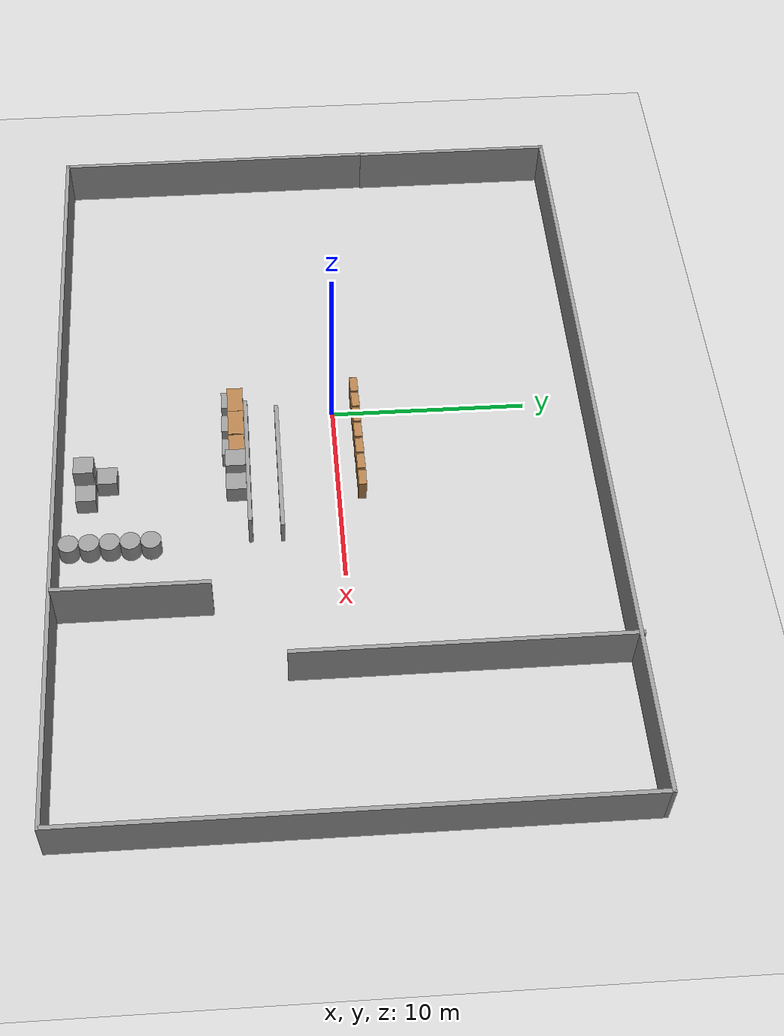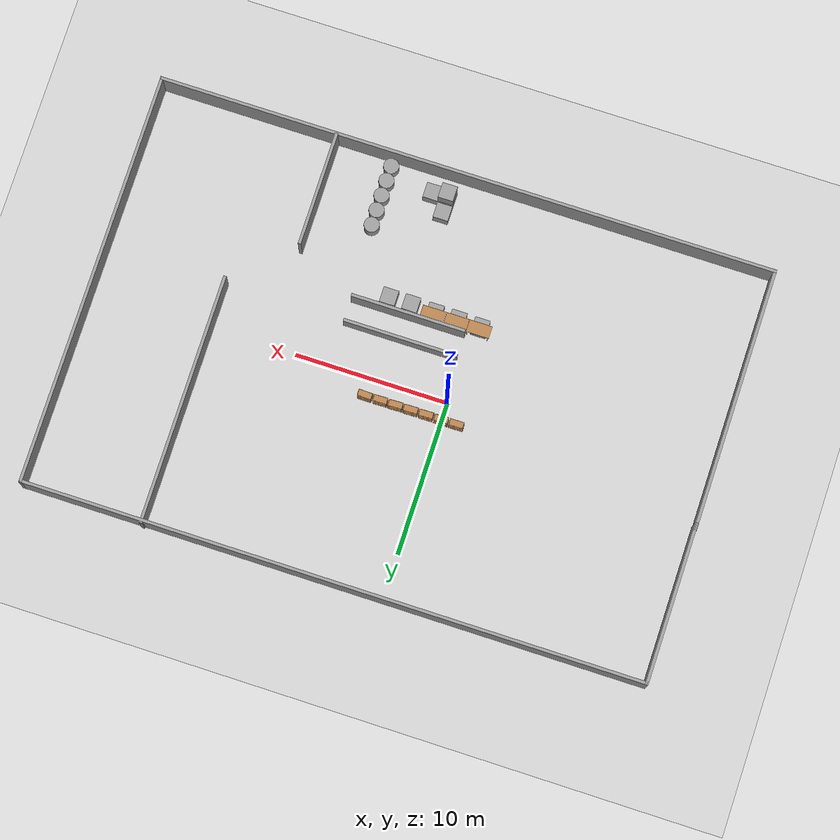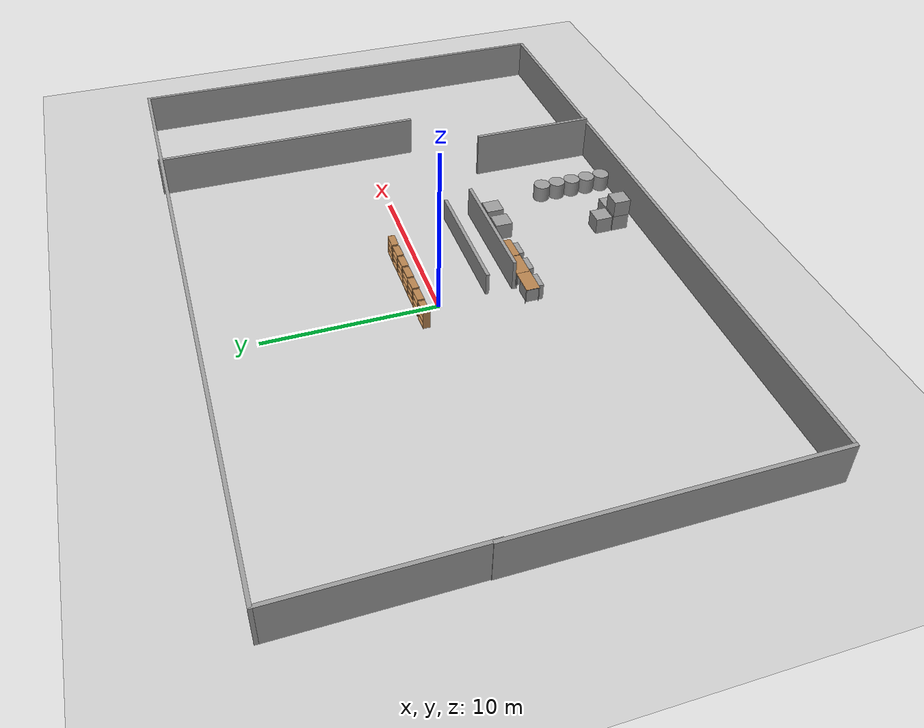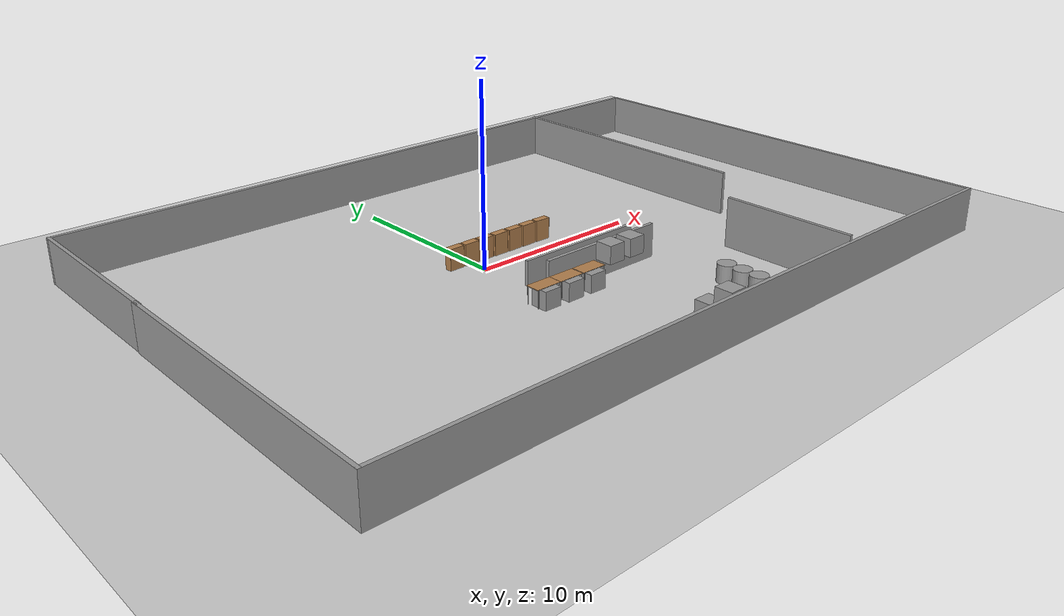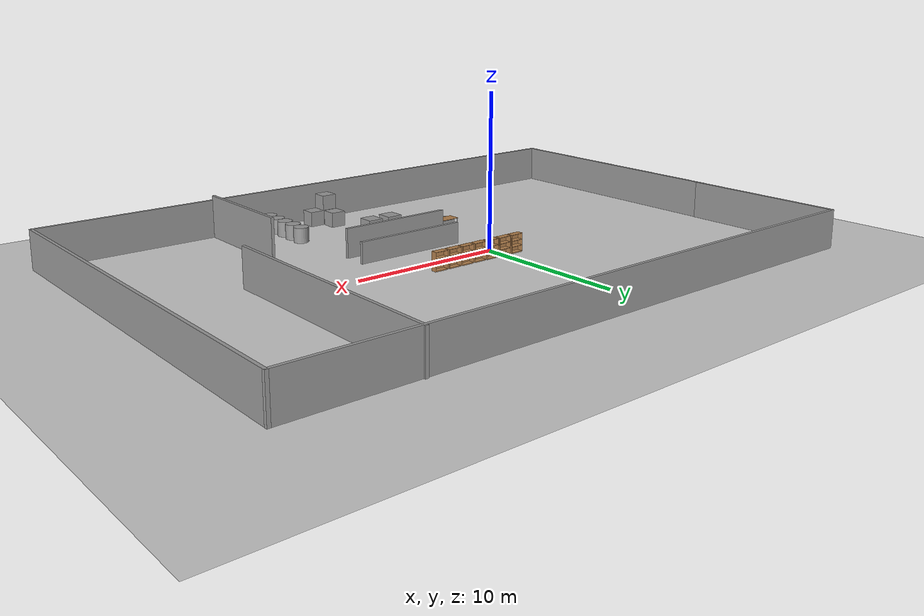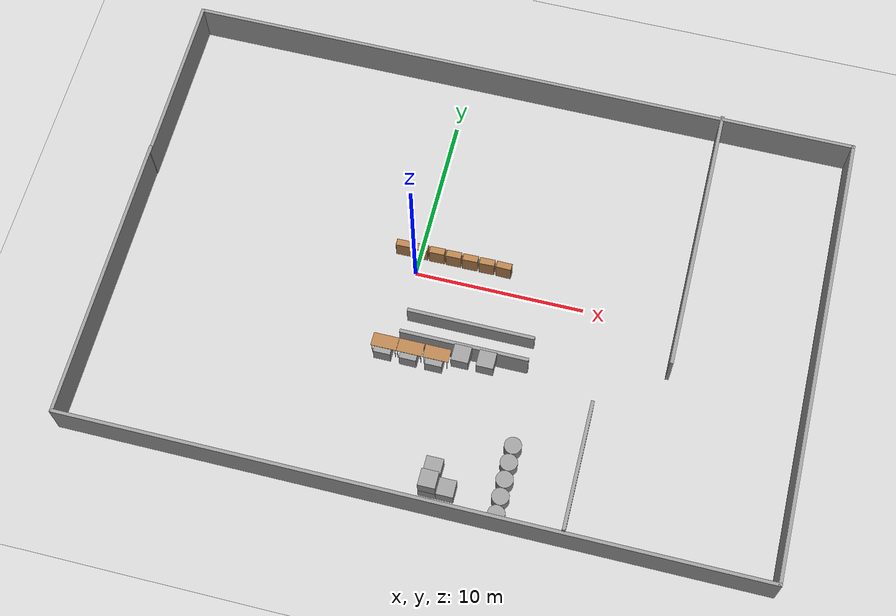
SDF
<sdf version="1.4">
 <world name="default">
  <model name="ground_plane">
   <static>1</static>
   <link name="link">
    <collision name="collision">
     <geometry><plane><normal>0 0 1</normal><size>100 100</size></plane></geometry>
     <surface><friction><ode><mu>100</mu><mu2>50</mu2></ode></friction></surface>
    </collision>
    <visual name="visual">
     <cast_shadows>0</cast_shadows>
     <geometry><plane><normal>0 0 1</normal><size>100 100</size></plane></geometry>
     <material>
      <script><uri>file://media/materials/scripts/gazebo.material</uri><name>Gazebo/Grey</name></script>
     </material>
    </visual>
    <velocity_decay><linear>0</linear><angular>0</angular></velocity_decay>
   </link>
  </model>
  <model name="model">
   <link name="Wall_1">
    <collision name="Wall_1_Collision">
     <geometry><box><size>17.2537 0.2 2.5</size></box></geometry>
     <pose>0 0 1.25 0 -0 0</pose>
    </collision>
    <visual name="Wall_1_Visual">
     <pose>0 0 1.25 0 -0 0</pose>
     <geometry><box><size>17.2537 0.2 2.5</size></box></geometry>
     <material>
      <script><uri>file://media/materials/scripts/gazebo.material</uri><name>Gazebo/Grey</name></script>
     </material>
    </visual>
    <velocity_decay><linear>0</linear><angular>0</angular></velocity_decay>
    <pose>-20.2542 -5.39043 0 0 0 -1.5708</pose>
   </link>
   <link name="Wall_2">
    <collision name="Wall_2_Collision">
     <geometry><box><size>40.6619 0.2 2.5</size></box></geometry>
     <pose>0 0 1.25 0 -0 0</pose>
    </collision>
    <visual name="Wall_2_Visual">
     <pose>0 0 1.25 0 -0 0</pose>
     <geometry><box><size>40.6619 0.2 2.5</size></box></geometry>
     <material>
      <script><uri>file://media/materials/scripts/gazebo.material</uri><name>Gazebo/Grey</name></script>
     </material>
    </visual>
    <velocity_decay><linear>0</linear><angular>0</angular></velocity_decay>
    <pose>-0.02326 -13.9173 0 0 -0 0</pose>
   </link>
   <link name="Wall_3">
    <collision name="Wall_3_Collision">
     <geometry><box><size>27.2435 0.2 2.5</size></box></geometry>
     <pose>0 0 1.25 0 -0 0</pose>
    </collision>
    <visual name="Wall_3_Visual">
     <pose>0 0 1.25 0 -0 0</pose>
     <geometry><box><size>27.2435 0.2 2.5</size></box></geometry>
     <material>
      <script><uri>file://media/materials/scripts/gazebo.material</uri><name>Gazebo/Grey</name></script>
     </material>
    </visual>
    <velocity_decay><linear>0</linear><angular>0</angular></velocity_decay>
    <pose>20.2077 -0.395493 0 0 -0 1.5708</pose>
   </link>
   <link name="Wall_4">
    <collision name="Wall_4_Collision">
     <geometry><box><size>40.6249 0.2 2.5</size></box></geometry>
     <pose>0 0 1.25 0 -0 0</pose>
    </collision>
    <visual name="Wall_4_Visual">
     <pose>0 0 1.25 0 -0 0</pose>
     <geometry><box><size>40.6249 0.2 2.5</size></box></geometry>
     <material>
      <script><uri>file://media/materials/scripts/gazebo.material</uri><name>Gazebo/Grey</name></script>
     </material>
    </visual>
    <velocity_decay><linear>0</linear><angular>0</angular></velocity_decay>
    <pose>-0.004758 13.1263 0 0 -0 3.14159</pose>
   </link>
   <link name="Wall_5">
    <collision name="Wall_5_Collision">
     <geometry><box><size>10.4934 0.2 2.5</size></box></geometry>
     <pose>0 0 1.25 0 -0 0</pose>
    </collision>
    <visual name="Wall_5_Visual">
     <pose>0 0 1.25 0 -0 0</pose>
     <geometry><box><size>10.4934 0.2 2.5</size></box></geometry>
     <material>
      <script><uri>file://media/materials/scripts/gazebo.material</uri><name>Gazebo/Grey</name></script>
     </material>
    </visual>
    <velocity_decay><linear>0</linear><angular>0</angular></velocity_decay>
    <pose>-20.2172 7.97958 0 0 0 -1.5708</pose>
   </link>
   <link name="Wall_7">
    <collision name="Wall_7_Collision">
     <geometry><box><size>16.3419 0.2 2.5</size></box></geometry>
     <pose>0 0 1.25 0 -0 0</pose>
    </collision>
    <visual name="Wall_7_Visual">
     <pose>0 0 1.25 0 -0 0</pose>
     <geometry><box><size>16.3419 0.2 2.5</size></box></geometry>
     <material>
      <script><uri>file://media/materials/scripts/gazebo.material</uri><name>Gazebo/Grey</name></script>
     </material>
    </visual>
    <velocity_decay><linear>0</linear><angular>0</angular></velocity_decay>
    <pose>12.3275 5.15285 0 0 0 -1.5708</pose>
   </link>
   <static>1</static>
   <pose>3.2317 -0.01025 0 0 -0 0</pose>
  </model>
  <model name="bookshelf_3">
   <static>1</static>
   <link name="link">
    <inertial><mass>1</mass></inertial>
    <collision name="back">
     <pose>0 0.005 0.6 0 -0 0</pose>
     <geometry><box><size>0.9 0.01 1.2</size></box></geometry>
    </collision>
    <visual name="visual1">
     <pose>0 0.005 0.6 0 -0 0</pose>
     <geometry><box><size>0.9 0.01 1.2</size></box></geometry>
     <material>
      <script><uri>file://media/materials/scripts/gazebo.material</uri><name>Gazebo/Wood</name></script>
     </material>
    </visual>
    <collision name="left_side">
     <pose>0.45 -0.195 0.6 0 -0 0</pose>
     <geometry><box><size>0.02 0.4 1.2</size></box></geometry>
    </collision>
    <visual name="visual2">
     <pose>0.45 -0.195 0.6 0 -0 0</pose>
     <geometry><box><size>0.02 0.4 1.2</size></box></geometry>
     <material>
      <script><uri>file://media/materials/scripts/gazebo.material</uri><name>Gazebo/Wood</name></script>
     </material>
    </visual>
    <collision name="right_side">
     <pose>-0.45 -0.195 0.6 0 -0 0</pose>
     <geometry><box><size>0.02 0.4 1.2</size></box></geometry>
    </collision>
    <visual name="visual3">
     <pose>-0.45 -0.195 0.6 0 -0 0</pose>
     <geometry><box><size>0.02 0.4 1.2</size></box></geometry>
     <material>
      <script><uri>file://media/materials/scripts/gazebo.material</uri><name>Gazebo/Wood</name></script>
     </material>
    </visual>
    <collision name="bottom">
     <pose>0 -0.195 0.03 0 -0 0</pose>
     <geometry><box><size>0.88 0.4 0.06</size></box></geometry>
    </collision>
    <visual name="visual4">
     <pose>0 -0.195 0.03 0 -0 0</pose>
     <geometry><box><size>0.88 0.4 0.06</size></box></geometry>
     <material>
      <script><uri>file://media/materials/scripts/gazebo.material</uri><name>Gazebo/Wood</name></script>
     </material>
    </visual>
    <collision name="top">
     <pose>0 -0.195 1.19 0 -0 0</pose>
     <geometry><box><size>0.88 0.4 0.02</size></box></geometry>
    </collision>
    <visual name="visual5">
     <pose>0 -0.195 1.19 0 -0 0</pose>
     <geometry><box><size>0.88 0.4 0.02</size></box></geometry>
     <material>
      <script><uri>file://media/materials/scripts/gazebo.material</uri><name>Gazebo/Wood</name></script>
     </material>
    </visual>
    <collision name="low_shelf">
     <pose>0 -0.195 0.43 0 -0 0</pose>
     <geometry><box><size>0.88 0.4 0.02</size></box></geometry>
    </collision>
    <visual name="visual6">
     <pose>0 -0.195 0.43 0 -0 0</pose>
     <geometry><box><size>0.88 0.4 0.02</size></box></geometry>
     <material>
      <script><uri>file://media/materials/scripts/gazebo.material</uri><name>Gazebo/Wood</name></script>
     </material>
    </visual>
    <collision name="high_shelf">
     <pose>0 -0.195 0.8 0 -0 0</pose>
     <geometry><box><size>0.88 0.4 0.02</size></box></geometry>
    </collision>
    <visual name="visual7">
     <pose>0 -0.195 0.8 0 -0 0</pose>
     <geometry><box><size>0.88 0.4 0.02</size></box></geometry>
     <material>
      <script><uri>file://media/materials/scripts/gazebo.material</uri><name>Gazebo/Wood</name></script>
     </material>
    </visual>
    <velocity_decay><linear>0</linear><angular>0</angular></velocity_decay>
   </link>
   <pose>5 1 0 0 -0 3.11866</pose>
  </model>
  <model name="bookshelf_4">
   <static>1</static>
   <link name="link">
    <inertial><mass>1</mass></inertial>
    <collision name="back">
     <pose>0 0.005 0.6 0 -0 0</pose>
     <geometry><box><size>0.9 0.01 1.2</size></box></geometry>
    </collision>
    <visual name="visual1">
     <pose>0 0.005 0.6 0 -0 0</pose>
     <geometry><box><size>0.9 0.01 1.2</size></box></geometry>
     <material>
      <script><uri>file://media/materials/scripts/gazebo.material</uri><name>Gazebo/Wood</name></script>
     </material>
    </visual>
    <collision name="left_side">
     <pose>0.45 -0.195 0.6 0 -0 0</pose>
     <geometry><box><size>0.02 0.4 1.2</size></box></geometry>
    </collision>
    <visual name="visual2">
     <pose>0.45 -0.195 0.6 0 -0 0</pose>
     <geometry><box><size>0.02 0.4 1.2</size></box></geometry>
     <material>
      <script><uri>file://media/materials/scripts/gazebo.material</uri><name>Gazebo/Wood</name></script>
     </material>
    </visual>
    <collision name="right_side">
     <pose>-0.45 -0.195 0.6 0 -0 0</pose>
     <geometry><box><size>0.02 0.4 1.2</size></box></geometry>
    </collision>
    <visual name="visual3">
     <pose>-0.45 -0.195 0.6 0 -0 0</pose>
     <geometry><box><size>0.02 0.4 1.2</size></box></geometry>
     <material>
      <script><uri>file://media/materials/scripts/gazebo.material</uri><name>Gazebo/Wood</name></script>
     </material>
    </visual>
    <collision name="bottom">
     <pose>0 -0.195 0.03 0 -0 0</pose>
     <geometry><box><size>0.88 0.4 0.06</size></box></geometry>
    </collision>
    <visual name="visual4">
     <pose>0 -0.195 0.03 0 -0 0</pose>
     <geometry><box><size>0.88 0.4 0.06</size></box></geometry>
     <material>
      <script><uri>file://media/materials/scripts/gazebo.material</uri><name>Gazebo/Wood</name></script>
     </material>
    </visual>
    <collision name="top">
     <pose>0 -0.195 1.19 0 -0 0</pose>
     <geometry><box><size>0.88 0.4 0.02</size></box></geometry>
    </collision>
    <visual name="visual5">
     <pose>0 -0.195 1.19 0 -0 0</pose>
     <geometry><box><size>0.88 0.4 0.02</size></box></geometry>
     <material>
      <script><uri>file://media/materials/scripts/gazebo.material</uri><name>Gazebo/Wood</name></script>
     </material>
    </visual>
    <collision name="low_shelf">
     <pose>0 -0.195 0.43 0 -0 0</pose>
     <geometry><box><size>0.88 0.4 0.02</size></box></geometry>
    </collision>
    <visual name="visual6">
     <pose>0 -0.195 0.43 0 -0 0</pose>
     <geometry><box><size>0.88 0.4 0.02</size></box></geometry>
     <material>
      <script><uri>file://media/materials/scripts/gazebo.material</uri><name>Gazebo/Wood</name></script>
     </material>
    </visual>
    <collision name="high_shelf">
     <pose>0 -0.195 0.8 0 -0 0</pose>
     <geometry><box><size>0.88 0.4 0.02</size></box></geometry>
    </collision>
    <visual name="visual7">
     <pose>0 -0.195 0.8 0 -0 0</pose>
     <geometry><box><size>0.88 0.4 0.02</size></box></geometry>
     <material>
      <script><uri>file://media/materials/scripts/gazebo.material</uri><name>Gazebo/Wood</name></script>
     </material>
    </visual>
    <velocity_decay><linear>0</linear><angular>0</angular></velocity_decay>
   </link>
   <pose>4 1 0 0 0 -3.1202</pose>
  </model>
  <model name="bookshelf_5">
   <static>1</static>
   <link name="link">
    <inertial><mass>1</mass></inertial>
    <collision name="back">
     <pose>0 0.005 0.6 0 -0 0</pose>
     <geometry><box><size>0.9 0.01 1.2</size></box></geometry>
    </collision>
    <visual name="visual1">
     <pose>0 0.005 0.6 0 -0 0</pose>
     <geometry><box><size>0.9 0.01 1.2</size></box></geometry>
     <material>
      <script><uri>file://media/materials/scripts/gazebo.material</uri><name>Gazebo/Wood</name></script>
     </material>
    </visual>
    <collision name="left_side">
     <pose>0.45 -0.195 0.6 0 -0 0</pose>
     <geometry><box><size>0.02 0.4 1.2</size></box></geometry>
    </collision>
    <visual name="visual2">
     <pose>0.45 -0.195 0.6 0 -0 0</pose>
     <geometry><box><size>0.02 0.4 1.2</size></box></geometry>
     <material>
      <script><uri>file://media/materials/scripts/gazebo.material</uri><name>Gazebo/Wood</name></script>
     </material>
    </visual>
    <collision name="right_side">
     <pose>-0.45 -0.195 0.6 0 -0 0</pose>
     <geometry><box><size>0.02 0.4 1.2</size></box></geometry>
    </collision>
    <visual name="visual3">
     <pose>-0.45 -0.195 0.6 0 -0 0</pose>
     <geometry><box><size>0.02 0.4 1.2</size></box></geometry>
     <material>
      <script><uri>file://media/materials/scripts/gazebo.material</uri><name>Gazebo/Wood</name></script>
     </material>
    </visual>
    <collision name="bottom">
     <pose>0 -0.195 0.03 0 -0 0</pose>
     <geometry><box><size>0.88 0.4 0.06</size></box></geometry>
    </collision>
    <visual name="visual4">
     <pose>0 -0.195 0.03 0 -0 0</pose>
     <geometry><box><size>0.88 0.4 0.06</size></box></geometry>
     <material>
      <script><uri>file://media/materials/scripts/gazebo.material</uri><name>Gazebo/Wood</name></script>
     </material>
    </visual>
    <collision name="top">
     <pose>0 -0.195 1.19 0 -0 0</pose>
     <geometry><box><size>0.88 0.4 0.02</size></box></geometry>
    </collision>
    <visual name="visual5">
     <pose>0 -0.195 1.19 0 -0 0</pose>
     <geometry><box><size>0.88 0.4 0.02</size></box></geometry>
     <material>
      <script><uri>file://media/materials/scripts/gazebo.material</uri><name>Gazebo/Wood</name></script>
     </material>
    </visual>
    <collision name="low_shelf">
     <pose>0 -0.195 0.43 0 -0 0</pose>
     <geometry><box><size>0.88 0.4 0.02</size></box></geometry>
    </collision>
    <visual name="visual6">
     <pose>0 -0.195 0.43 0 -0 0</pose>
     <geometry><box><size>0.88 0.4 0.02</size></box></geometry>
     <material>
      <script><uri>file://media/materials/scripts/gazebo.material</uri><name>Gazebo/Wood</name></script>
     </material>
    </visual>
    <collision name="high_shelf">
     <pose>0 -0.195 0.8 0 -0 0</pose>
     <geometry><box><size>0.88 0.4 0.02</size></box></geometry>
    </collision>
    <visual name="visual7">
     <pose>0 -0.195 0.8 0 -0 0</pose>
     <geometry><box><size>0.88 0.4 0.02</size></box></geometry>
     <material>
      <script><uri>file://media/materials/scripts/gazebo.material</uri><name>Gazebo/Wood</name></script>
     </material>
    </visual>
    <velocity_decay><linear>0</linear><angular>0</angular></velocity_decay>
   </link>
   <pose>3 1 0 0 0 -3.11535</pose>
  </model>
  <model name="bookshelf_6">
   <static>1</static>
   <link name="link">
    <inertial><mass>1</mass></inertial>
    <collision name="back">
     <pose>0 0.005 0.6 0 -0 0</pose>
     <geometry><box><size>0.9 0.01 1.2</size></box></geometry>
    </collision>
    <visual name="visual1">
     <pose>0 0.005 0.6 0 -0 0</pose>
     <geometry><box><size>0.9 0.01 1.2</size></box></geometry>
     <material>
      <script><uri>file://media/materials/scripts/gazebo.material</uri><name>Gazebo/Wood</name></script>
     </material>
    </visual>
    <collision name="left_side">
     <pose>0.45 -0.195 0.6 0 -0 0</pose>
     <geometry><box><size>0.02 0.4 1.2</size></box></geometry>
    </collision>
    <visual name="visual2">
     <pose>0.45 -0.195 0.6 0 -0 0</pose>
     <geometry><box><size>0.02 0.4 1.2</size></box></geometry>
     <material>
      <script><uri>file://media/materials/scripts/gazebo.material</uri><name>Gazebo/Wood</name></script>
     </material>
    </visual>
    <collision name="right_side">
     <pose>-0.45 -0.195 0.6 0 -0 0</pose>
     <geometry><box><size>0.02 0.4 1.2</size></box></geometry>
    </collision>
    <visual name="visual3">
     <pose>-0.45 -0.195 0.6 0 -0 0</pose>
     <geometry><box><size>0.02 0.4 1.2</size></box></geometry>
     <material>
      <script><uri>file://media/materials/scripts/gazebo.material</uri><name>Gazebo/Wood</name></script>
     </material>
    </visual>
    <collision name="bottom">
     <pose>0 -0.195 0.03 0 -0 0</pose>
     <geometry><box><size>0.88 0.4 0.06</size></box></geometry>
    </collision>
    <visual name="visual4">
     <pose>0 -0.195 0.03 0 -0 0</pose>
     <geometry><box><size>0.88 0.4 0.06</size></box></geometry>
     <material>
      <script><uri>file://media/materials/scripts/gazebo.material</uri><name>Gazebo/Wood</name></script>
     </material>
    </visual>
    <collision name="top">
     <pose>0 -0.195 1.19 0 -0 0</pose>
     <geometry><box><size>0.88 0.4 0.02</size></box></geometry>
    </collision>
    <visual name="visual5">
     <pose>0 -0.195 1.19 0 -0 0</pose>
     <geometry><box><size>0.88 0.4 0.02</size></box></geometry>
     <material>
      <script><uri>file://media/materials/scripts/gazebo.material</uri><name>Gazebo/Wood</name></script>
     </material>
    </visual>
    <collision name="low_shelf">
     <pose>0 -0.195 0.43 0 -0 0</pose>
     <geometry><box><size>0.88 0.4 0.02</size></box></geometry>
    </collision>
    <visual name="visual6">
     <pose>0 -0.195 0.43 0 -0 0</pose>
     <geometry><box><size>0.88 0.4 0.02</size></box></geometry>
     <material>
      <script><uri>file://media/materials/scripts/gazebo.material</uri><name>Gazebo/Wood</name></script>
     </material>
    </visual>
    <collision name="high_shelf">
     <pose>0 -0.195 0.8 0 -0 0</pose>
     <geometry><box><size>0.88 0.4 0.02</size></box></geometry>
    </collision>
    <visual name="visual7">
     <pose>0 -0.195 0.8 0 -0 0</pose>
     <geometry><box><size>0.88 0.4 0.02</size></box></geometry>
     <material>
      <script><uri>file://media/materials/scripts/gazebo.material</uri><name>Gazebo/Wood</name></script>
     </material>
    </visual>
    <velocity_decay><linear>0</linear><angular>0</angular></velocity_decay>
   </link>
   <pose>2 1 0 0 0 -3.1207</pose>
  </model>
  <model name="bookshelf_7">
   <static>1</static>
   <link name="link">
    <inertial><mass>1</mass></inertial>
    <collision name="back">
     <pose>0 0.005 0.6 0 -0 0</pose>
     <geometry><box><size>0.9 0.01 1.2</size></box></geometry>
    </collision>
    <visual name="visual1">
     <pose>0 0.005 0.6 0 -0 0</pose>
     <geometry><box><size>0.9 0.01 1.2</size></box></geometry>
     <material>
      <script><uri>file://media/materials/scripts/gazebo.material</uri><name>Gazebo/Wood</name></script>
     </material>
    </visual>
    <collision name="left_side">
     <pose>0.45 -0.195 0.6 0 -0 0</pose>
     <geometry><box><size>0.02 0.4 1.2</size></box></geometry>
    </collision>
    <visual name="visual2">
     <pose>0.45 -0.195 0.6 0 -0 0</pose>
     <geometry><box><size>0.02 0.4 1.2</size></box></geometry>
     <material>
      <script><uri>file://media/materials/scripts/gazebo.material</uri><name>Gazebo/Wood</name></script>
     </material>
    </visual>
    <collision name="right_side">
     <pose>-0.45 -0.195 0.6 0 -0 0</pose>
     <geometry><box><size>0.02 0.4 1.2</size></box></geometry>
    </collision>
    <visual name="visual3">
     <pose>-0.45 -0.195 0.6 0 -0 0</pose>
     <geometry><box><size>0.02 0.4 1.2</size></box></geometry>
     <material>
      <script><uri>file://media/materials/scripts/gazebo.material</uri><name>Gazebo/Wood</name></script>
     </material>
    </visual>
    <collision name="bottom">
     <pose>0 -0.195 0.03 0 -0 0</pose>
     <geometry><box><size>0.88 0.4 0.06</size></box></geometry>
    </collision>
    <visual name="visual4">
     <pose>0 -0.195 0.03 0 -0 0</pose>
     <geometry><box><size>0.88 0.4 0.06</size></box></geometry>
     <material>
      <script><uri>file://media/materials/scripts/gazebo.material</uri><name>Gazebo/Wood</name></script>
     </material>
    </visual>
    <collision name="top">
     <pose>0 -0.195 1.19 0 -0 0</pose>
     <geometry><box><size>0.88 0.4 0.02</size></box></geometry>
    </collision>
    <visual name="visual5">
     <pose>0 -0.195 1.19 0 -0 0</pose>
     <geometry><box><size>0.88 0.4 0.02</size></box></geometry>
     <material>
      <script><uri>file://media/materials/scripts/gazebo.material</uri><name>Gazebo/Wood</name></script>
     </material>
    </visual>
    <collision name="low_shelf">
     <pose>0 -0.195 0.43 0 -0 0</pose>
     <geometry><box><size>0.88 0.4 0.02</size></box></geometry>
    </collision>
    <visual name="visual6">
     <pose>0 -0.195 0.43 0 -0 0</pose>
     <geometry><box><size>0.88 0.4 0.02</size></box></geometry>
     <material>
      <script><uri>file://media/materials/scripts/gazebo.material</uri><name>Gazebo/Wood</name></script>
     </material>
    </visual>
    <collision name="high_shelf">
     <pose>0 -0.195 0.8 0 -0 0</pose>
     <geometry><box><size>0.88 0.4 0.02</size></box></geometry>
    </collision>
    <visual name="visual7">
     <pose>0 -0.195 0.8 0 -0 0</pose>
     <geometry><box><size>0.88 0.4 0.02</size></box></geometry>
     <material>
      <script><uri>file://media/materials/scripts/gazebo.material</uri><name>Gazebo/Wood</name></script>
     </material>
    </visual>
    <velocity_decay><linear>0</linear><angular>0</angular></velocity_decay>
   </link>
   <pose>1 1 0 0 0 -3.11494</pose>
  </model>
  <model name="bookshelf_8">
   <static>1</static>
   <link name="link">
    <inertial><mass>1</mass></inertial>
    <collision name="back">
     <pose>0 0.005 0.6 0 -0 0</pose>
     <geometry><box><size>0.9 0.01 1.2</size></box></geometry>
    </collision>
    <visual name="visual1">
     <pose>0 0.005 0.6 0 -0 0</pose>
     <geometry><box><size>0.9 0.01 1.2</size></box></geometry>
     <material>
      <script><uri>file://media/materials/scripts/gazebo.material</uri><name>Gazebo/Wood</name></script>
     </material>
    </visual>
    <collision name="left_side">
     <pose>0.45 -0.195 0.6 0 -0 0</pose>
     <geometry><box><size>0.02 0.4 1.2</size></box></geometry>
    </collision>
    <visual name="visual2">
     <pose>0.45 -0.195 0.6 0 -0 0</pose>
     <geometry><box><size>0.02 0.4 1.2</size></box></geometry>
     <material>
      <script><uri>file://media/materials/scripts/gazebo.material</uri><name>Gazebo/Wood</name></script>
     </material>
    </visual>
    <collision name="right_side">
     <pose>-0.45 -0.195 0.6 0 -0 0</pose>
     <geometry><box><size>0.02 0.4 1.2</size></box></geometry>
    </collision>
    <visual name="visual3">
     <pose>-0.45 -0.195 0.6 0 -0 0</pose>
     <geometry><box><size>0.02 0.4 1.2</size></box></geometry>
     <material>
      <script><uri>file://media/materials/scripts/gazebo.material</uri><name>Gazebo/Wood</name></script>
     </material>
    </visual>
    <collision name="bottom">
     <pose>0 -0.195 0.03 0 -0 0</pose>
     <geometry><box><size>0.88 0.4 0.06</size></box></geometry>
    </collision>
    <visual name="visual4">
     <pose>0 -0.195 0.03 0 -0 0</pose>
     <geometry><box><size>0.88 0.4 0.06</size></box></geometry>
     <material>
      <script><uri>file://media/materials/scripts/gazebo.material</uri><name>Gazebo/Wood</name></script>
     </material>
    </visual>
    <collision name="top">
     <pose>0 -0.195 1.19 0 -0 0</pose>
     <geometry><box><size>0.88 0.4 0.02</size></box></geometry>
    </collision>
    <visual name="visual5">
     <pose>0 -0.195 1.19 0 -0 0</pose>
     <geometry><box><size>0.88 0.4 0.02</size></box></geometry>
     <material>
      <script><uri>file://media/materials/scripts/gazebo.material</uri><name>Gazebo/Wood</name></script>
     </material>
    </visual>
    <collision name="low_shelf">
     <pose>0 -0.195 0.43 0 -0 0</pose>
     <geometry><box><size>0.88 0.4 0.02</size></box></geometry>
    </collision>
    <visual name="visual6">
     <pose>0 -0.195 0.43 0 -0 0</pose>
     <geometry><box><size>0.88 0.4 0.02</size></box></geometry>
     <material>
      <script><uri>file://media/materials/scripts/gazebo.material</uri><name>Gazebo/Wood</name></script>
     </material>
    </visual>
    <collision name="high_shelf">
     <pose>0 -0.195 0.8 0 -0 0</pose>
     <geometry><box><size>0.88 0.4 0.02</size></box></geometry>
    </collision>
    <visual name="visual7">
     <pose>0 -0.195 0.8 0 -0 0</pose>
     <geometry><box><size>0.88 0.4 0.02</size></box></geometry>
     <material>
      <script><uri>file://media/materials/scripts/gazebo.material</uri><name>Gazebo/Wood</name></script>
     </material>
    </visual>
    <velocity_decay><linear>0</linear><angular>0</angular></velocity_decay>
   </link>
   <pose>0 1 0 0 0 -3.12369</pose>
  </model>
  <model name="bookshelf_9">
   <static>1</static>
   <link name="link">
    <inertial><mass>1</mass></inertial>
    <collision name="back">
     <pose>0 0.005 0.6 0 -0 0</pose>
     <geometry><box><size>0.9 0.01 1.2</size></box></geometry>
    </collision>
    <visual name="visual1">
     <pose>0 0.005 0.6 0 -0 0</pose>
     <geometry><box><size>0.9 0.01 1.2</size></box></geometry>
     <material>
      <script><uri>file://media/materials/scripts/gazebo.material</uri><name>Gazebo/Wood</name></script>
     </material>
    </visual>
    <collision name="left_side">
     <pose>0.45 -0.195 0.6 0 -0 0</pose>
     <geometry><box><size>0.02 0.4 1.2</size></box></geometry>
    </collision>
    <visual name="visual2">
     <pose>0.45 -0.195 0.6 0 -0 0</pose>
     <geometry><box><size>0.02 0.4 1.2</size></box></geometry>
     <material>
      <script><uri>file://media/materials/scripts/gazebo.material</uri><name>Gazebo/Wood</name></script>
     </material>
    </visual>
    <collision name="right_side">
     <pose>-0.45 -0.195 0.6 0 -0 0</pose>
     <geometry><box><size>0.02 0.4 1.2</size></box></geometry>
    </collision>
    <visual name="visual3">
     <pose>-0.45 -0.195 0.6 0 -0 0</pose>
     <geometry><box><size>0.02 0.4 1.2</size></box></geometry>
     <material>
      <script><uri>file://media/materials/scripts/gazebo.material</uri><name>Gazebo/Wood</name></script>
     </material>
    </visual>
    <collision name="bottom">
     <pose>0 -0.195 0.03 0 -0 0</pose>
     <geometry><box><size>0.88 0.4 0.06</size></box></geometry>
    </collision>
    <visual name="visual4">
     <pose>0 -0.195 0.03 0 -0 0</pose>
     <geometry><box><size>0.88 0.4 0.06</size></box></geometry>
     <material>
      <script><uri>file://media/materials/scripts/gazebo.material</uri><name>Gazebo/Wood</name></script>
     </material>
    </visual>
    <collision name="top">
     <pose>0 -0.195 1.19 0 -0 0</pose>
     <geometry><box><size>0.88 0.4 0.02</size></box></geometry>
    </collision>
    <visual name="visual5">
     <pose>0 -0.195 1.19 0 -0 0</pose>
     <geometry><box><size>0.88 0.4 0.02</size></box></geometry>
     <material>
      <script><uri>file://media/materials/scripts/gazebo.material</uri><name>Gazebo/Wood</name></script>
     </material>
    </visual>
    <collision name="low_shelf">
     <pose>0 -0.195 0.43 0 -0 0</pose>
     <geometry><box><size>0.88 0.4 0.02</size></box></geometry>
    </collision>
    <visual name="visual6">
     <pose>0 -0.195 0.43 0 -0 0</pose>
     <geometry><box><size>0.88 0.4 0.02</size></box></geometry>
     <material>
      <script><uri>file://media/materials/scripts/gazebo.material</uri><name>Gazebo/Wood</name></script>
     </material>
    </visual>
    <collision name="high_shelf">
     <pose>0 -0.195 0.8 0 -0 0</pose>
     <geometry><box><size>0.88 0.4 0.02</size></box></geometry>
    </collision>
    <visual name="visual7">
     <pose>0 -0.195 0.8 0 -0 0</pose>
     <geometry><box><size>0.88 0.4 0.02</size></box></geometry>
     <material>
      <script><uri>file://media/materials/scripts/gazebo.material</uri><name>Gazebo/Wood</name></script>
     </material>
    </visual>
    <velocity_decay><linear>0</linear><angular>0</angular></velocity_decay>
   </link>
   <pose>-1 1 0 0 0 -3.12411</pose>
  </model>
  <model name="grey_wall_0">
   <static>1</static>
   <link name="link">
    <pose>0 0 1.4 0 -0 0</pose>
    <collision name="collision"><geometry><box><size>7.5 0.2 2.8</size></box></geometry></collision>
    <visual name="visual">
     <cast_shadows>0</cast_shadows>
     <geometry><box><size>7.5 0.2 2.8</size></box></geometry>
     <material>
      <script>
       <uri>model://grey_wall/materials/scripts</uri>
       <uri>model://grey_wall/materials/textures</uri>
       <name>vrc/grey_wall</name>
      </script>
     </material>
    </visual>
    <velocity_decay><linear>0</linear><angular>0</angular></velocity_decay>
   </link>
   <pose>4.01391 -2.89697 -1.46697 0 -0 0</pose>
  </model>
  <model name="grey_wall_1">
   <static>1</static>
   <link name="link">
    <pose>0 0 1.4 0 -0 0</pose>
    <collision name="collision"><geometry><box><size>7.5 0.2 2.8</size></box></geometry></collision>
    <visual name="visual">
     <cast_shadows>0</cast_shadows>
     <geometry><box><size>7.5 0.2 2.8</size></box></geometry>
     <material>
      <script>
       <uri>model://grey_wall/materials/scripts</uri>
       <uri>model://grey_wall/materials/textures</uri>
       <name>vrc/grey_wall</name>
      </script>
     </material>
    </visual>
    <velocity_decay><linear>0</linear><angular>0</angular></velocity_decay>
   </link>
   <pose>4 -4.46518 -0.965655 0 -0 0</pose>
  </model>
  <model name="table_6">
   <static>1</static>
   <link name="link">
    <collision name="surface">
     <pose>0 0 1 0 -0 0</pose>
     <geometry><box><size>1.5 0.8 0.03</size></box></geometry>
     <surface><friction><ode><mu>0.6</mu><mu2>0.6</mu2></ode></friction></surface>
    </collision>
    <visual name="visual1">
     <pose>0 0 1 0 -0 0</pose>
     <geometry><box><size>1.5 0.8 0.03</size></box></geometry>
     <material>
      <script><uri>file://media/materials/scripts/gazebo.material</uri><name>Gazebo/Wood</name></script>
     </material>
    </visual>
    <collision name="front_left_leg">
     <pose>0.68 0.38 0.5 0 -0 0</pose>
     <geometry><cylinder><radius>0.02</radius><length>1</length></cylinder></geometry>
    </collision>
    <visual name="front_left_leg">
     <pose>0.68 0.38 0.5 0 -0 0</pose>
     <geometry><cylinder><radius>0.02</radius><length>1</length></cylinder></geometry>
     <material>
      <script><uri>file://media/materials/scripts/gazebo.material</uri><name>Gazebo/Grey</name></script>
     </material>
    </visual>
    <collision name="front_right_leg">
     <pose>0.68 -0.38 0.5 0 -0 0</pose>
     <geometry><cylinder><radius>0.02</radius><length>1</length></cylinder></geometry>
    </collision>
    <visual name="front_right_leg">
     <pose>0.68 -0.38 0.5 0 -0 0</pose>
     <geometry><cylinder><radius>0.02</radius><length>1</length></cylinder></geometry>
     <material>
      <script><uri>file://media/materials/scripts/gazebo.material</uri><name>Gazebo/Grey</name></script>
     </material>
    </visual>
    <collision name="back_right_leg">
     <pose>-0.68 -0.38 0.5 0 -0 0</pose>
     <geometry><cylinder><radius>0.02</radius><length>1</length></cylinder></geometry>
    </collision>
    <visual name="back_right_leg">
     <pose>-0.68 -0.38 0.5 0 -0 0</pose>
     <geometry><cylinder><radius>0.02</radius><length>1</length></cylinder></geometry>
     <material>
      <script><uri>file://media/materials/scripts/gazebo.material</uri><name>Gazebo/Grey</name></script>
     </material>
    </visual>
    <collision name="back_left_leg">
     <pose>-0.68 0.38 0.5 0 -0 0</pose>
     <geometry><cylinder><radius>0.02</radius><length>1</length></cylinder></geometry>
    </collision>
    <visual name="back_left_leg">
     <pose>-0.68 0.38 0.5 0 -0 0</pose>
     <geometry><cylinder><radius>0.02</radius><length>1</length></cylinder></geometry>
     <material>
      <script><uri>file://media/materials/scripts/gazebo.material</uri><name>Gazebo/Grey</name></script>
     </material>
    </visual>
    <velocity_decay><linear>0</linear><angular>0</angular></velocity_decay>
   </link>
   <pose>-0.505735 -5 0 0 -0 0</pose>
  </model>
  <model name="table_7">
   <static>1</static>
   <link name="link">
    <collision name="surface">
     <pose>0 0 1 0 -0 0</pose>
     <geometry><box><size>1.5 0.8 0.03</size></box></geometry>
     <surface><friction><ode><mu>0.6</mu><mu2>0.6</mu2></ode></friction></surface>
    </collision>
    <visual name="visual1">
     <pose>0 0 1 0 -0 0</pose>
     <geometry><box><size>1.5 0.8 0.03</size></box></geometry>
     <material>
      <script><uri>file://media/materials/scripts/gazebo.material</uri><name>Gazebo/Wood</name></script>
     </material>
    </visual>
    <collision name="front_left_leg">
     <pose>0.68 0.38 0.5 0 -0 0</pose>
     <geometry><cylinder><radius>0.02</radius><length>1</length></cylinder></geometry>
    </collision>
    <visual name="front_left_leg">
     <pose>0.68 0.38 0.5 0 -0 0</pose>
     <geometry><cylinder><radius>0.02</radius><length>1</length></cylinder></geometry>
     <material>
      <script><uri>file://media/materials/scripts/gazebo.material</uri><name>Gazebo/Grey</name></script>
     </material>
    </visual>
    <collision name="front_right_leg">
     <pose>0.68 -0.38 0.5 0 -0 0</pose>
     <geometry><cylinder><radius>0.02</radius><length>1</length></cylinder></geometry>
    </collision>
    <visual name="front_right_leg">
     <pose>0.68 -0.38 0.5 0 -0 0</pose>
     <geometry><cylinder><radius>0.02</radius><length>1</length></cylinder></geometry>
     <material>
      <script><uri>file://media/materials/scripts/gazebo.material</uri><name>Gazebo/Grey</name></script>
     </material>
    </visual>
    <collision name="back_right_leg">
     <pose>-0.68 -0.38 0.5 0 -0 0</pose>
     <geometry><cylinder><radius>0.02</radius><length>1</length></cylinder></geometry>
    </collision>
    <visual name="back_right_leg">
     <pose>-0.68 -0.38 0.5 0 -0 0</pose>
     <geometry><cylinder><radius>0.02</radius><length>1</length></cylinder></geometry>
     <material>
      <script><uri>file://media/materials/scripts/gazebo.material</uri><name>Gazebo/Grey</name></script>
     </material>
    </visual>
    <collision name="back_left_leg">
     <pose>-0.68 0.38 0.5 0 -0 0</pose>
     <geometry><cylinder><radius>0.02</radius><length>1</length></cylinder></geometry>
    </collision>
    <visual name="back_left_leg">
     <pose>-0.68 0.38 0.5 0 -0 0</pose>
     <geometry><cylinder><radius>0.02</radius><length>1</length></cylinder></geometry>
     <material>
      <script><uri>file://media/materials/scripts/gazebo.material</uri><name>Gazebo/Grey</name></script>
     </material>
    </visual>
    <velocity_decay><linear>0</linear><angular>0</angular></velocity_decay>
   </link>
   <pose>1 -5 0 0 -0 0</pose>
  </model>
  <model name="table_8">
   <static>1</static>
   <link name="link">
    <collision name="surface">
     <pose>0 0 1 0 -0 0</pose>
     <geometry><box><size>1.5 0.8 0.03</size></box></geometry>
     <surface><friction><ode><mu>0.6</mu><mu2>0.6</mu2></ode></friction></surface>
    </collision>
    <visual name="visual1">
     <pose>0 0 1 0 -0 0</pose>
     <geometry><box><size>1.5 0.8 0.03</size></box></geometry>
     <material>
      <script><uri>file://media/materials/scripts/gazebo.material</uri><name>Gazebo/Wood</name></script>
     </material>
    </visual>
    <collision name="front_left_leg">
     <pose>0.68 0.38 0.5 0 -0 0</pose>
     <geometry><cylinder><radius>0.02</radius><length>1</length></cylinder></geometry>
    </collision>
    <visual name="front_left_leg">
     <pose>0.68 0.38 0.5 0 -0 0</pose>
     <geometry><cylinder><radius>0.02</radius><length>1</length></cylinder></geometry>
     <material>
      <script><uri>file://media/materials/scripts/gazebo.material</uri><name>Gazebo/Grey</name></script>
     </material>
    </visual>
    <collision name="front_right_leg">
     <pose>0.68 -0.38 0.5 0 -0 0</pose>
     <geometry><cylinder><radius>0.02</radius><length>1</length></cylinder></geometry>
    </collision>
    <visual name="front_right_leg">
     <pose>0.68 -0.38 0.5 0 -0 0</pose>
     <geometry><cylinder><radius>0.02</radius><length>1</length></cylinder></geometry>
     <material>
      <script><uri>file://media/materials/scripts/gazebo.material</uri><name>Gazebo/Grey</name></script>
     </material>
    </visual>
    <collision name="back_right_leg">
     <pose>-0.68 -0.38 0.5 0 -0 0</pose>
     <geometry><cylinder><radius>0.02</radius><length>1</length></cylinder></geometry>
    </collision>
    <visual name="back_right_leg">
     <pose>-0.68 -0.38 0.5 0 -0 0</pose>
     <geometry><cylinder><radius>0.02</radius><length>1</length></cylinder></geometry>
     <material>
      <script><uri>file://media/materials/scripts/gazebo.material</uri><name>Gazebo/Grey</name></script>
     </material>
    </visual>
    <collision name="back_left_leg">
     <pose>-0.68 0.38 0.5 0 -0 0</pose>
     <geometry><cylinder><radius>0.02</radius><length>1</length></cylinder></geometry>
    </collision>
    <visual name="back_left_leg">
     <pose>-0.68 0.38 0.5 0 -0 0</pose>
     <geometry><cylinder><radius>0.02</radius><length>1</length></cylinder></geometry>
     <material>
      <script><uri>file://media/materials/scripts/gazebo.material</uri><name>Gazebo/Grey</name></script>
     </material>
    </visual>
    <velocity_decay><linear>0</linear><angular>0</angular></velocity_decay>
   </link>
   <pose>2.55647 -5 0 0 -0 0</pose>
  </model>
  <model name="unit_box_1">
   <pose>4 -5.06518 1.49463 0 -0 0</pose>
   <link name="link">
    <inertial>
     <mass>1</mass>
     <inertia><ixx>1</ixx><ixy>0</ixy><ixz>0</ixz><iyy>1</iyy><iyz>0</iyz><izz>1</izz></inertia>
    </inertial>
    <collision name="collision"><geometry><box><size>1 1 2.98925</size></box></geometry></collision>
    <visual name="visual">
     <geometry><box><size>1 1 1</size></box></geometry>
     <material>
      <script><uri>file://media/materials/scripts/gazebo.material</uri><name>Gazebo/Grey</name></script>
     </material>
    </visual>
    <velocity_decay><linear>0</linear><angular>0</angular></velocity_decay>
   </link>
   <static>0</static>
  </model>
  <model name="unit_box_2">
   <pose>0.993764 -5.23629 0.453488 0 -0 0</pose>
   <link name="link">
    <inertial>
     <mass>1</mass>
     <inertia><ixx>1</ixx><ixy>0</ixy><ixz>0</ixz><iyy>1</iyy><iyz>0</iyz><izz>1</izz></inertia>
    </inertial>
    <collision name="collision"><geometry><box><size>1 1 0.906977</size></box></geometry></collision>
    <visual name="visual">
     <geometry><box><size>1 1 1</size></box></geometry>
     <material>
      <script><uri>file://media/materials/scripts/gazebo.material</uri><name>Gazebo/Grey</name></script>
     </material>
    </visual>
    <velocity_decay><linear>0</linear><angular>0</angular></velocity_decay>
   </link>
   <static>0</static>
  </model>
  <model name="unit_box_3">
   <pose>-0.530993 -5.21317 0.455622 0 -0 0</pose>
   <link name="link">
    <inertial>
     <mass>1</mass>
     <inertia><ixx>1</ixx><ixy>0</ixy><ixz>0</ixz><iyy>1</iyy><iyz>0</iyz><izz>1</izz></inertia>
    </inertial>
    <collision name="collision"><geometry><box><size>1 1 0.911245</size></box></geometry></collision>
    <visual name="visual">
     <geometry><box><size>1 1 1</size></box></geometry>
     <material>
      <script><uri>file://media/materials/scripts/gazebo.material</uri><name>Gazebo/Grey</name></script>
     </material>
    </visual>
    <velocity_decay><linear>0</linear><angular>0</angular></velocity_decay>
   </link>
   <static>0</static>
  </model>
  <model name="unit_box_5">
   <pose>2.49352 -5.23975 0.43259 0 -0 0</pose>
   <link name="link">
    <inertial>
     <mass>1</mass>
     <inertia><ixx>1</ixx><ixy>0</ixy><ixz>0</ixz><iyy>1</iyy><iyz>0</iyz><izz>1</izz></inertia>
    </inertial>
    <collision name="collision"><geometry><box><size>1 1 0.865181</size></box></geometry></collision>
    <visual name="visual">
     <geometry><box><size>1 1 1</size></box></geometry>
     <material>
      <script><uri>file://media/materials/scripts/gazebo.material</uri><name>Gazebo/Grey</name></script>
     </material>
    </visual>
    <velocity_decay><linear>0</linear><angular>0</angular></velocity_decay>
   </link>
   <static>0</static>
  </model>
  <model name="unit_box_6">
   <pose>5.44759 -5.06526 1.48165 0 1e-06 0.000146</pose>
   <link name="link">
    <inertial>
     <mass>1</mass>
     <inertia><ixx>1</ixx><ixy>0</ixy><ixz>0</ixz><iyy>1</iyy><iyz>0</iyz><izz>1</izz></inertia>
    </inertial>
    <collision name="collision"><geometry><box><size>1 1 2.9633</size></box></geometry></collision>
    <visual name="visual">
     <geometry><box><size>1 1 1</size></box></geometry>
     <material>
      <script><uri>file://media/materials/scripts/gazebo.material</uri><name>Gazebo/Grey</name></script>
     </material>
    </visual>
    <velocity_decay><linear>0</linear><angular>0</angular></velocity_decay>
   </link>
   <static>0</static>
  </model>
  <model name="unit_box_1_0">
   <pose>4.00019 -12.5527 0.499982 -1.1e-05 2e-06 -5.6e-05</pose>
   <link name="link">
    <inertial>
     <mass>1</mass>
     <inertia><ixx>1</ixx><ixy>0</ixy><ixz>0</ixz><iyy>1</iyy><iyz>0</iyz><izz>1</izz></inertia>
    </inertial>
    <collision name="collision"><geometry><box><size>1 1 1</size></box></geometry></collision>
    <visual name="visual">
     <geometry><box><size>1 1 1</size></box></geometry>
     <material>
      <script><uri>file://media/materials/scripts/gazebo.material</uri><name>Gazebo/Grey</name></script>
     </material>
    </visual>
    <velocity_decay><linear>0</linear><angular>0</angular></velocity_decay>
   </link>
   <static>0</static>
  </model>
  <model name="unit_box_2_0">
   <pose>4 -11.5045 0.5 0 -0 0</pose>
   <link name="link">
    <inertial>
     <mass>1</mass>
     <inertia><ixx>1</ixx><ixy>0</ixy><ixz>0</ixz><iyy>1</iyy><iyz>0</iyz><izz>1</izz></inertia>
    </inertial>
    <collision name="collision"><geometry><box><size>1 1 1</size></box></geometry></collision>
    <visual name="visual">
     <geometry><box><size>1 1 1</size></box></geometry>
     <material>
      <script><uri>file://media/materials/scripts/gazebo.material</uri><name>Gazebo/Grey</name></script>
     </material>
    </visual>
    <velocity_decay><linear>0</linear><angular>0</angular></velocity_decay>
   </link>
   <static>0</static>
  </model>
  <model name="unit_box_3_0">
   <pose>5.0002 -12.5442 0.49998 -4e-06 -6e-06 -6.8e-05</pose>
   <link name="link">
    <inertial>
     <mass>1</mass>
     <inertia><ixx>1</ixx><ixy>0</ixy><ixz>0</ixz><iyy>1</iyy><iyz>0</iyz><izz>1</izz></inertia>
    </inertial>
    <collision name="collision"><geometry><box><size>1 1 1</size></box></geometry></collision>
    <visual name="visual">
     <geometry><box><size>1 1 1</size></box></geometry>
     <material>
      <script><uri>file://media/materials/scripts/gazebo.material</uri><name>Gazebo/Grey</name></script>
     </material>
    </visual>
    <velocity_decay><linear>0</linear><angular>0</angular></velocity_decay>
   </link>
   <static>0</static>
  </model>
  <model name="unit_box_4_0">
   <pose>4.01583 -12.5832 1.49999 -2e-05 9e-06 -0.00109</pose>
   <link name="link">
    <inertial>
     <mass>1</mass>
     <inertia><ixx>1</ixx><ixy>0</ixy><ixz>0</ixz><iyy>1</iyy><iyz>0</iyz><izz>1</izz></inertia>
    </inertial>
    <collision name="collision"><geometry><box><size>1 1 1</size></box></geometry></collision>
    <visual name="visual">
     <geometry><box><size>1 1 1</size></box></geometry>
     <material>
      <script><uri>file://media/materials/scripts/gazebo.material</uri><name>Gazebo/Grey</name></script>
     </material>
    </visual>
    <velocity_decay><linear>0</linear><angular>0</angular></velocity_decay>
   </link>
   <static>0</static>
  </model>
  <model name="unit_cylinder_1">
   <pose>8.00007 -12.3249 0.499998 1e-06 -0 -0.000118</pose>
   <link name="link">
    <inertial>
     <mass>1</mass>
     <inertia><ixx>1</ixx><ixy>0</ixy><ixz>0</ixz><iyy>1</iyy><iyz>0</iyz><izz>1</izz></inertia>
    </inertial>
    <collision name="collision">
     <geometry><cylinder><radius>0.5</radius><length>1</length></cylinder></geometry>
    </collision>
    <visual name="visual">
     <geometry><cylinder><radius>0.5</radius><length>1</length></cylinder></geometry>
     <material>
      <script><uri>file://media/materials/scripts/gazebo.material</uri><name>Gazebo/Grey</name></script>
     </material>
    </visual>
    <velocity_decay><linear>0</linear><angular>0</angular></velocity_decay>
   </link>
   <static>0</static>
  </model>
  <model name="unit_cylinder_2">
   <pose>7.99969 -11.3243 0.499998 -0 -0 -0.000294</pose>
   <link name="link">
    <inertial>
     <mass>1</mass>
     <inertia><ixx>1</ixx><ixy>0</ixy><ixz>0</ixz><iyy>1</iyy><iyz>0</iyz><izz>1</izz></inertia>
    </inertial>
    <collision name="collision">
     <geometry><cylinder><radius>0.5</radius><length>1</length></cylinder></geometry>
    </collision>
    <visual name="visual">
     <geometry><cylinder><radius>0.5</radius><length>1</length></cylinder></geometry>
     <material>
      <script><uri>file://media/materials/scripts/gazebo.material</uri><name>Gazebo/Grey</name></script>
     </material>
    </visual>
    <velocity_decay><linear>0</linear><angular>0</angular></velocity_decay>
   </link>
   <static>0</static>
  </model>
  <model name="unit_cylinder_3">
   <pose>8.00007 -10.324 0.499998 0 -0 0.000108</pose>
   <link name="link">
    <inertial>
     <mass>1</mass>
     <inertia><ixx>1</ixx><ixy>0</ixy><ixz>0</ixz><iyy>1</iyy><iyz>0</iyz><izz>1</izz></inertia>
    </inertial>
    <collision name="collision">
     <geometry><cylinder><radius>0.5</radius><length>1</length></cylinder></geometry>
    </collision>
    <visual name="visual">
     <geometry><cylinder><radius>0.5</radius><length>1</length></cylinder></geometry>
     <material>
      <script><uri>file://media/materials/scripts/gazebo.material</uri><name>Gazebo/Grey</name></script>
     </material>
    </visual>
    <velocity_decay><linear>0</linear><angular>0</angular></velocity_decay>
   </link>
   <static>0</static>
  </model>
  <model name="unit_cylinder_4">
   <pose>7.99988 -13.325 0.499992 -1e-06 -0 0.000244</pose>
   <link name="link">
    <inertial>
     <mass>1</mass>
     <inertia><ixx>1</ixx><ixy>0</ixy><ixz>0</ixz><iyy>1</iyy><iyz>0</iyz><izz>1</izz></inertia>
    </inertial>
    <collision name="collision">
     <geometry><cylinder><radius>0.5</radius><length>1</length></cylinder></geometry>
    </collision>
    <visual name="visual">
     <geometry><cylinder><radius>0.5</radius><length>1</length></cylinder></geometry>
     <material>
      <script><uri>file://media/materials/scripts/gazebo.material</uri><name>Gazebo/Grey</name></script>
     </material>
    </visual>
    <velocity_decay><linear>0</linear><angular>0</angular></velocity_decay>
   </link>
   <static>0</static>
  </model>
  <model name="unit_cylinder_5">
   <pose>8 -9.324 0.499992 0 -0 1.1e-05</pose>
   <link name="link">
    <inertial>
     <mass>1</mass>
     <inertia><ixx>1</ixx><ixy>0</ixy><ixz>0</ixz><iyy>1</iyy><iyz>0</iyz><izz>1</izz></inertia>
    </inertial>
    <collision name="collision">
     <geometry><cylinder><radius>0.5</radius><length>1</length></cylinder></geometry>
    </collision>
    <visual name="visual">
     <geometry><cylinder><radius>0.5</radius><length>1</length></cylinder></geometry>
     <material>
      <script><uri>file://media/materials/scripts/gazebo.material</uri><name>Gazebo/Grey</name></script>
     </material>
    </visual>
    <velocity_decay><linear>0</linear><angular>0</angular></velocity_decay>
   </link>
   <static>0</static>
  </model>
  <model name="grey_wall_3">
   <static>1</static>
   <link name="link">
    <pose>0 0 1.4 0 -0 0</pose>
    <collision name="collision"><geometry><box><size>7.5 0.2 2.8</size></box></geometry></collision>
    <visual name="visual">
     <cast_shadows>0</cast_shadows>
     <geometry><box><size>7.5 0.2 2.8</size></box></geometry>
     <material>
      <script>
       <uri>model://grey_wall/materials/scripts</uri>
       <uri>model://grey_wall/materials/textures</uri>
       <name>vrc/grey_wall</name>
      </script>
     </material>
    </visual>
    <velocity_decay><linear>0</linear><angular>0</angular></velocity_decay>
   </link>
   <pose>11.7693 -10.1154 0 0 0 -1.57029</pose>
  </model>
 </world>
</sdf>
